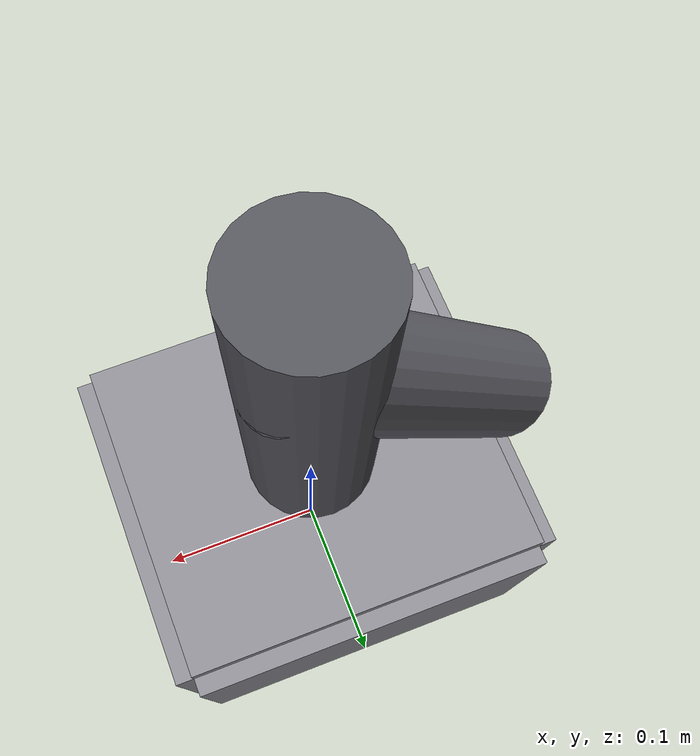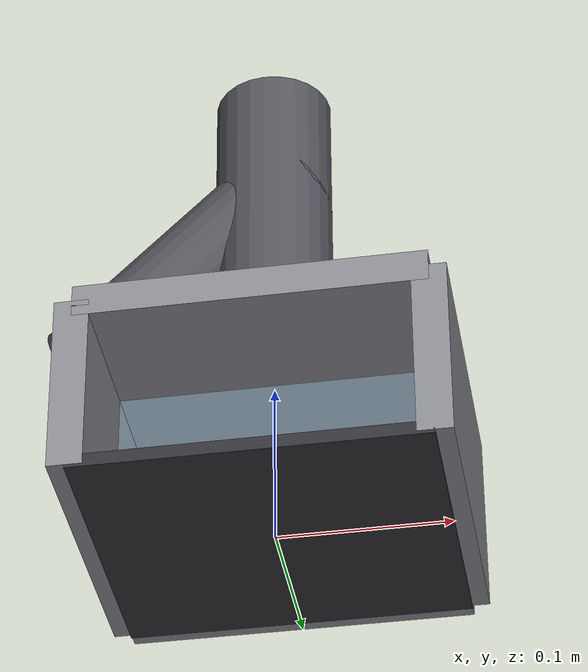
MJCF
<?xml version="1.0" encoding="utf-8"?>
<mujoco model="real_lab_dtu_nanolab_fibsem">
  <compiler angle="radian" autolimits="true"/>
  <default>
    <default class="body"><geom contype="1" conaffinity="1"/></default>
  </default>
  <worldbody>
    <body name="base">
      <geom type="box" size="0.1 0.01 0.055" pos="0 0.09 0.055" rgba="0.55 0.55 0.58 1" class="body"/>
      <geom type="box" size="0.01 0.09 0.055" pos="-0.1 0 0.055" rgba="0.55 0.55 0.58 1" class="body"/>
      <geom type="box" size="0.01 0.09 0.055" pos="0.1 0 0.055" rgba="0.55 0.55 0.58 1" class="body"/>
      <geom type="box" size="0.1 0.09 0.01" pos="0 0 0.11" rgba="0.55 0.55 0.58 1" class="body"/>
      <geom type="box" size="0.1 0.09 0.004" pos="0 0 0.002" rgba="0.2 0.2 0.22 1" class="body"/>
      <geom type="cylinder" size="0.035 0.1" pos="0 0 0.21" rgba="0.33 0.33 0.36 1" class="body"/>
      <geom type="cylinder" size="0.03 0.09" pos="-0.05 0 0.19" rgba="0.33 0.33 0.36 1" class="body" quat="0.924 0 0.383 0"/>
      <body name="door" pos="-0.09 0.0 0.055">
        <joint name="door_joint" type="hinge" axis="0 0 1" range="0 1.8" damping="0.6" frictionloss="0.3"/>
  <geom type="box" size="0.09 0.005 0.055" pos="0.09 0 0" rgba="0.6 0.8 0.9 0.35" class="body"/>
      </body>
    </body>
  </worldbody>
</mujoco>
